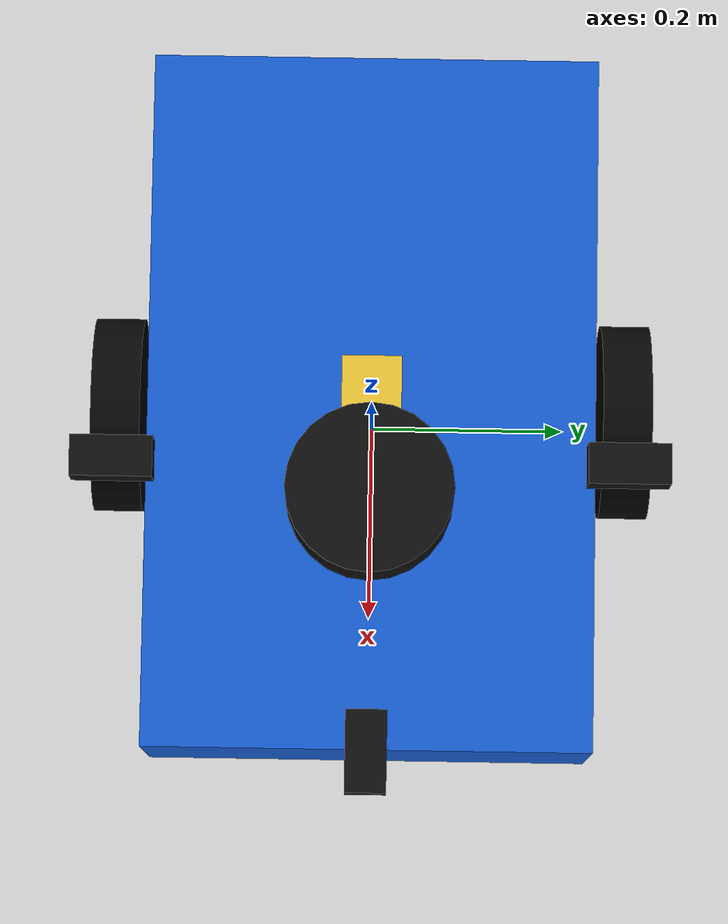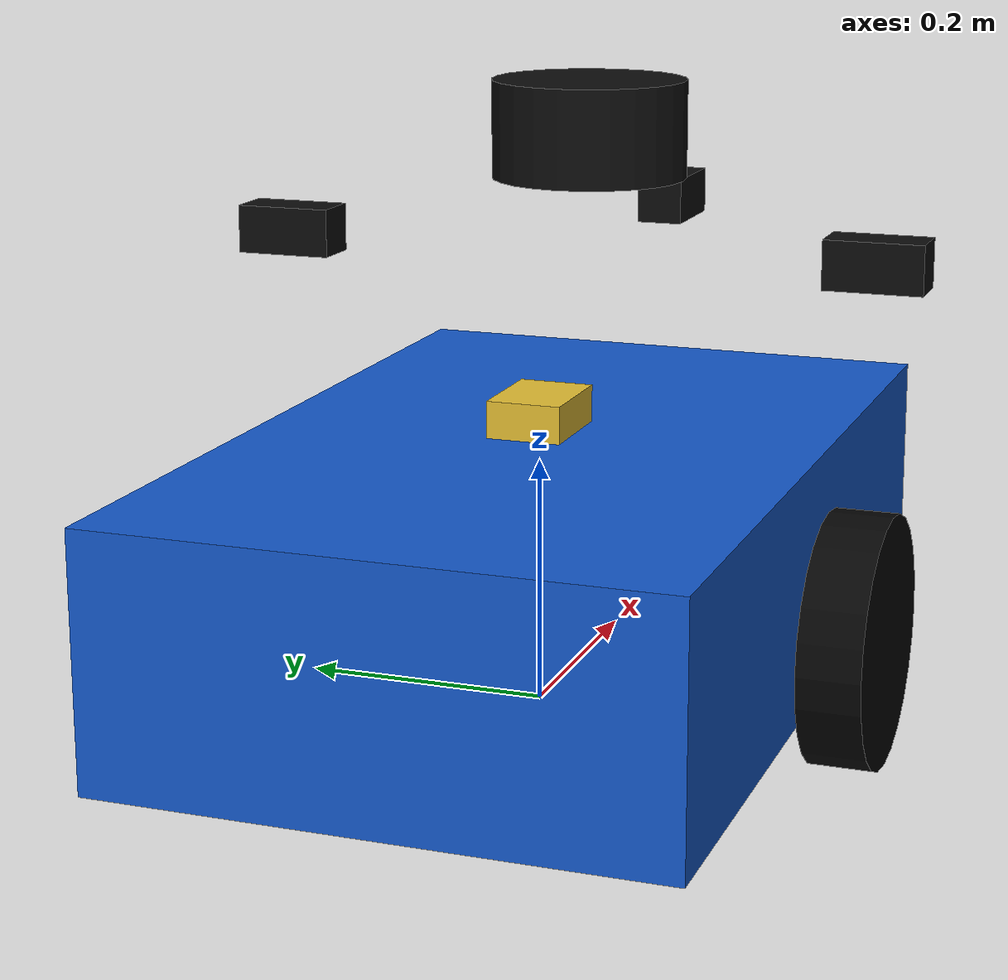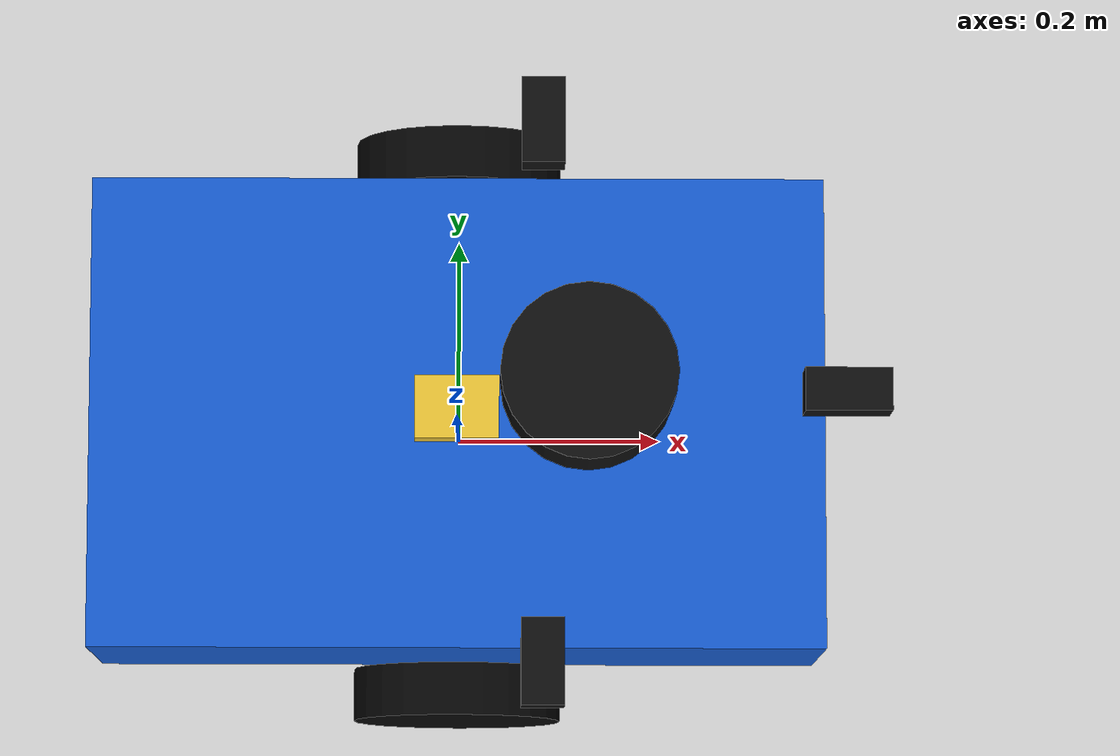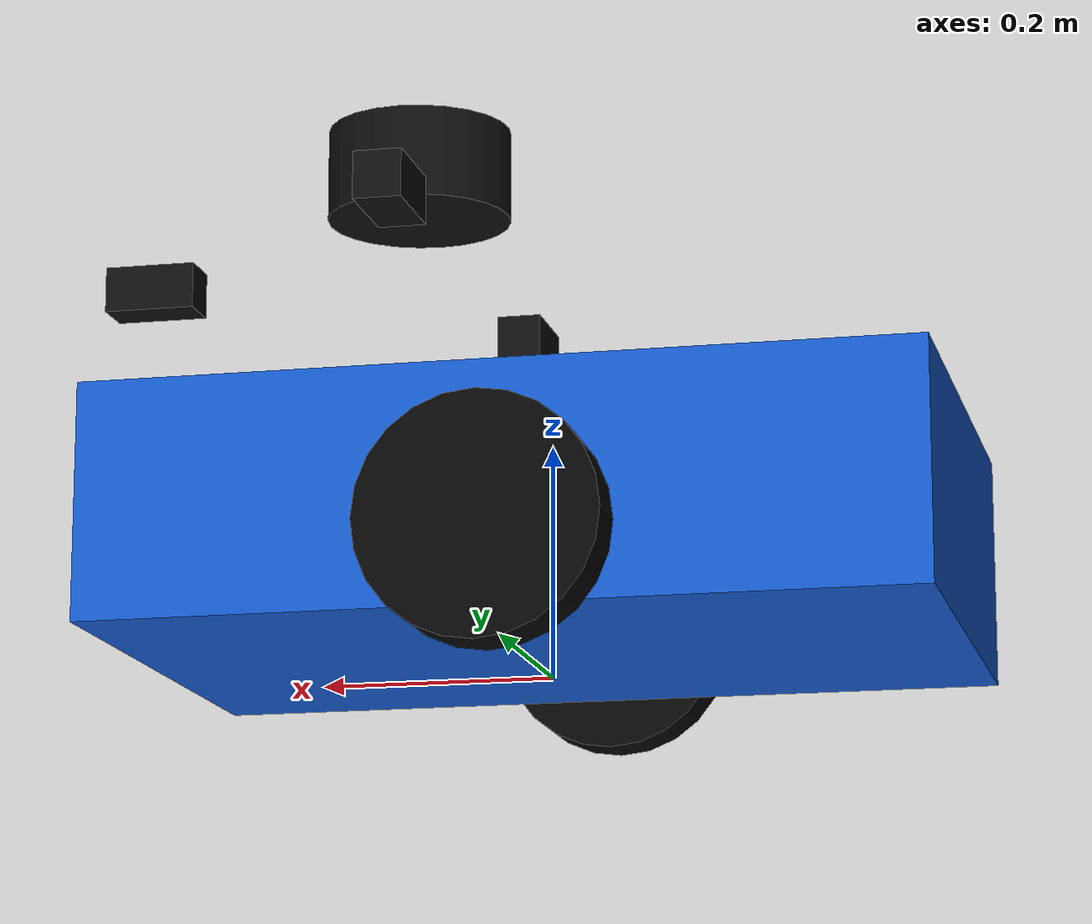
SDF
<?xml version="1.0"?>
<sdf version="1.9">
  <model name="dlio_car">
    <pose>0 0 0.12 0 0 0</pose>
    <self_collide>false</self_collide>

    <link name="base_link">
      <inertial>
        <mass>12.0</mass>
        <inertia>
          <ixx>0.20</ixx>
          <iyy>0.35</iyy>
          <izz>0.42</izz>
          <ixy>0</ixy>
          <ixz>0</ixz>
          <iyz>0</iyz>
        </inertia>
      </inertial>
      <collision name="base_collision">
        <geometry>
          <box>
            <size>0.70 0.45 0.20</size>
          </box>
        </geometry>
      </collision>
      <visual name="base_visual">
        <geometry>
          <box>
            <size>0.70 0.45 0.20</size>
          </box>
        </geometry>
        <material>
          <diffuse>0.08 0.35 0.80 1</diffuse>
        </material>
      </visual>
    </link>

    <link name="lidar">
      <pose relative_to="base_link">0.12 0 0.33 0 0 0</pose>
      <inertial>
        <mass>0.2</mass>
        <inertia>
          <ixx>0.0004</ixx>
          <iyy>0.0004</iyy>
          <izz>0.0004</izz>
          <ixy>0</ixy>
          <ixz>0</ixz>
          <iyz>0</iyz>
        </inertia>
      </inertial>
      <visual name="lidar_visual">
        <geometry>
          <cylinder>
            <radius>0.08</radius>
            <length>0.08</length>
          </cylinder>
        </geometry>
        <material>
          <diffuse>0.05 0.05 0.05 1</diffuse>
        </material>
      </visual>
      <sensor name="lidar_sensor" type="gpu_lidar">
        <topic>/points_raw</topic>
        <update_rate>10</update_rate>
        <always_on>true</always_on>
        <visualize>true</visualize>
        <ray>
          <scan>
            <horizontal>
              <samples>720</samples>
              <resolution>1</resolution>
              <min_angle>-3.14159265</min_angle>
              <max_angle>3.14159265</max_angle>
            </horizontal>
            <vertical>
              <samples>32</samples>
              <resolution>1</resolution>
              <min_angle>-0.45</min_angle>
              <max_angle>0.35</max_angle>
            </vertical>
          </scan>
          <range>
            <min>0.2</min>
            <max>18.0</max>
            <resolution>0.03</resolution>
          </range>
          <noise>
            <type>gaussian</type>
            <mean>0.0</mean>
            <stddev>0.01</stddev>
          </noise>
        </ray>
      </sensor>
    </link>

    <link name="imu">
      <pose relative_to="base_link">0 0 0.12 0 0 0</pose>
      <inertial>
        <mass>0.05</mass>
        <inertia>
          <ixx>0.00002</ixx>
          <iyy>0.00002</iyy>
          <izz>0.00002</izz>
          <ixy>0</ixy>
          <ixz>0</ixz>
          <iyz>0</iyz>
        </inertia>
      </inertial>
      <visual name="imu_visual">
        <geometry>
          <box>
            <size>0.08 0.06 0.03</size>
          </box>
        </geometry>
        <material>
          <diffuse>0.9 0.75 0.2 1</diffuse>
        </material>
      </visual>
      <sensor name="imu_sensor" type="imu">
        <topic>/imu_raw</topic>
        <update_rate>100</update_rate>
        <always_on>true</always_on>
      </sensor>
    </link>

    <link name="wildos_front_camera">
      <pose relative_to="base_link">0.36 0 0.24 0 0 0</pose>
      <inertial>
        <mass>0.08</mass>
        <inertia>
          <ixx>0.00005</ixx>
          <iyy>0.00005</iyy>
          <izz>0.00005</izz>
          <ixy>0</ixy>
          <ixz>0</ixz>
          <iyz>0</iyz>
        </inertia>
      </inertial>
      <visual name="front_camera_visual">
        <geometry>
          <box>
            <size>0.08 0.04 0.04</size>
          </box>
        </geometry>
        <material>
          <diffuse>0.05 0.05 0.05 1</diffuse>
        </material>
      </visual>
      <sensor name="front_camera_sensor" type="camera">
        <pose>0 0 0 0 0 3.14159265359</pose>
        <topic>/wildos/front/color/image_raw</topic>
        <update_rate>10</update_rate>
        <always_on>true</always_on>
        <visualize>true</visualize>
        <camera>
          <optical_frame_id>wildos_front_camera_color_optical_frame</optical_frame_id>
          <horizontal_fov>1.3962634</horizontal_fov>
          <image>
            <width>640</width>
            <height>480</height>
            <format>R8G8B8</format>
          </image>
          <clip>
            <near>0.05</near>
            <far>40.0</far>
          </clip>
        </camera>
      </sensor>
    </link>

    <link name="wildos_left_camera">
      <pose relative_to="base_link">0.08 0.25 0.24 0 0 1.57079632679</pose>
      <inertial>
        <mass>0.08</mass>
        <inertia>
          <ixx>0.00005</ixx>
          <iyy>0.00005</iyy>
          <izz>0.00005</izz>
          <ixy>0</ixy>
          <ixz>0</ixz>
          <iyz>0</iyz>
        </inertia>
      </inertial>
      <visual name="left_camera_visual">
        <geometry>
          <box>
            <size>0.08 0.04 0.04</size>
          </box>
        </geometry>
        <material>
          <diffuse>0.05 0.05 0.05 1</diffuse>
        </material>
      </visual>
      <sensor name="left_camera_sensor" type="camera">
        <pose>0 0 0 0 0 3.14159265359</pose>
        <topic>/wildos/left/color/image_raw</topic>
        <update_rate>10</update_rate>
        <always_on>true</always_on>
        <visualize>true</visualize>
        <camera>
          <optical_frame_id>wildos_left_camera_color_optical_frame</optical_frame_id>
          <horizontal_fov>1.3962634</horizontal_fov>
          <image>
            <width>640</width>
            <height>480</height>
            <format>R8G8B8</format>
          </image>
          <clip>
            <near>0.05</near>
            <far>40.0</far>
          </clip>
        </camera>
      </sensor>
    </link>

    <link name="wildos_right_camera">
      <pose relative_to="base_link">0.08 -0.25 0.24 0 0 -1.57079632679</pose>
      <inertial>
        <mass>0.08</mass>
        <inertia>
          <ixx>0.00005</ixx>
          <iyy>0.00005</iyy>
          <izz>0.00005</izz>
          <ixy>0</ixy>
          <ixz>0</ixz>
          <iyz>0</iyz>
        </inertia>
      </inertial>
      <visual name="right_camera_visual">
        <geometry>
          <box>
            <size>0.08 0.04 0.04</size>
          </box>
        </geometry>
        <material>
          <diffuse>0.05 0.05 0.05 1</diffuse>
        </material>
      </visual>
      <sensor name="right_camera_sensor" type="camera">
        <pose>0 0 0 0 0 3.14159265359</pose>
        <topic>/wildos/right/color/image_raw</topic>
        <update_rate>10</update_rate>
        <always_on>true</always_on>
        <visualize>true</visualize>
        <camera>
          <optical_frame_id>wildos_right_camera_color_optical_frame</optical_frame_id>
          <horizontal_fov>1.3962634</horizontal_fov>
          <image>
            <width>640</width>
            <height>480</height>
            <format>R8G8B8</format>
          </image>
          <clip>
            <near>0.05</near>
            <far>40.0</far>
          </clip>
        </camera>
      </sensor>
    </link>

    <link name="left_wheel">
      <pose relative_to="base_link">0 0.26 -0.04 1.57079632679 0 0</pose>
      <inertial>
        <mass>0.6</mass>
        <inertia>
          <ixx>0.002</ixx>
          <iyy>0.002</iyy>
          <izz>0.002</izz>
          <ixy>0</ixy>
          <ixz>0</ixz>
          <iyz>0</iyz>
        </inertia>
      </inertial>
      <collision name="left_wheel_collision">
        <geometry>
          <cylinder>
            <radius>0.10</radius>
            <length>0.05</length>
          </cylinder>
        </geometry>
      </collision>
      <visual name="left_wheel_visual">
        <geometry>
          <cylinder>
            <radius>0.10</radius>
            <length>0.05</length>
          </cylinder>
        </geometry>
        <material>
          <diffuse>0.02 0.02 0.02 1</diffuse>
        </material>
      </visual>
    </link>

    <link name="right_wheel">
      <pose relative_to="base_link">0 -0.26 -0.04 1.57079632679 0 0</pose>
      <inertial>
        <mass>0.6</mass>
        <inertia>
          <ixx>0.002</ixx>
          <iyy>0.002</iyy>
          <izz>0.002</izz>
          <ixy>0</ixy>
          <ixz>0</ixz>
          <iyz>0</iyz>
        </inertia>
      </inertial>
      <collision name="right_wheel_collision">
        <geometry>
          <cylinder>
            <radius>0.10</radius>
            <length>0.05</length>
          </cylinder>
        </geometry>
      </collision>
      <visual name="right_wheel_visual">
        <geometry>
          <cylinder>
            <radius>0.10</radius>
            <length>0.05</length>
          </cylinder>
        </geometry>
        <material>
          <diffuse>0.02 0.02 0.02 1</diffuse>
        </material>
      </visual>
    </link>

    <joint name="lidar_joint" type="fixed">
      <parent>base_link</parent>
      <child>lidar</child>
    </joint>
    <joint name="imu_joint" type="fixed">
      <parent>base_link</parent>
      <child>imu</child>
    </joint>
    <joint name="wildos_front_camera_joint" type="fixed">
      <parent>base_link</parent>
      <child>wildos_front_camera</child>
    </joint>
    <joint name="wildos_left_camera_joint" type="fixed">
      <parent>base_link</parent>
      <child>wildos_left_camera</child>
    </joint>
    <joint name="wildos_right_camera_joint" type="fixed">
      <parent>base_link</parent>
      <child>wildos_right_camera</child>
    </joint>
    <joint name="left_wheel_joint" type="revolute">
      <parent>base_link</parent>
      <child>left_wheel</child>
      <axis>
        <xyz>0 0 1</xyz>
      </axis>
    </joint>
    <joint name="right_wheel_joint" type="revolute">
      <parent>base_link</parent>
      <child>right_wheel</child>
      <axis>
        <xyz>0 0 1</xyz>
      </axis>
    </joint>

    <plugin filename="gz-sim-diff-drive-system" name="gz::sim::systems::DiffDrive">
      <left_joint>right_wheel_joint</left_joint>
      <right_joint>left_wheel_joint</right_joint>
      <wheel_separation>0.52</wheel_separation>
      <wheel_radius>0.10</wheel_radius>
      <topic>/cmd_vel</topic>
      <odom_topic>/gazebo/odom</odom_topic>
      <frame_id>odom</frame_id>
      <child_frame_id>base_link</child_frame_id>
    </plugin>

    <plugin filename="gz-sim-pose-publisher-system" name="gz::sim::systems::PosePublisher">
      <publish_model_pose>true</publish_model_pose>
      <publish_link_pose>false</publish_link_pose>
      <publish_collision_pose>false</publish_collision_pose>
      <publish_visual_pose>false</publish_visual_pose>
      <publish_nested_model_pose>false</publish_nested_model_pose>
      <use_pose_vector_msg>false</use_pose_vector_msg>
      <update_frequency>50</update_frequency>
    </plugin>
  </model>
</sdf>
